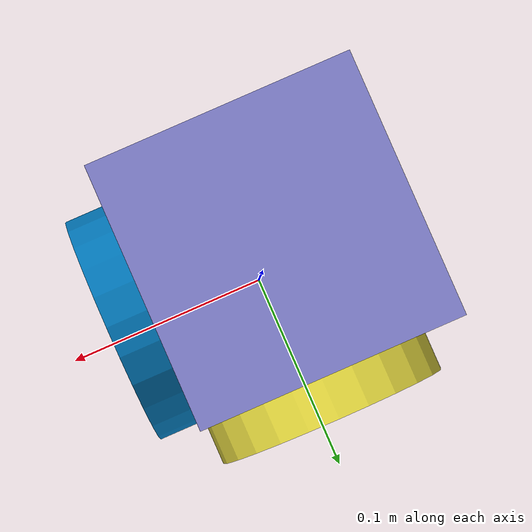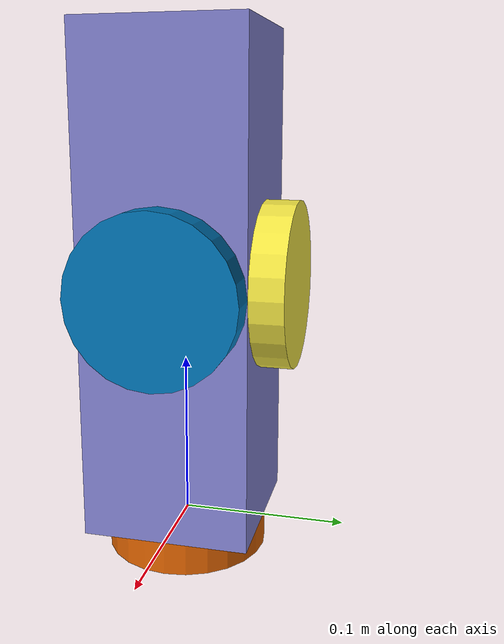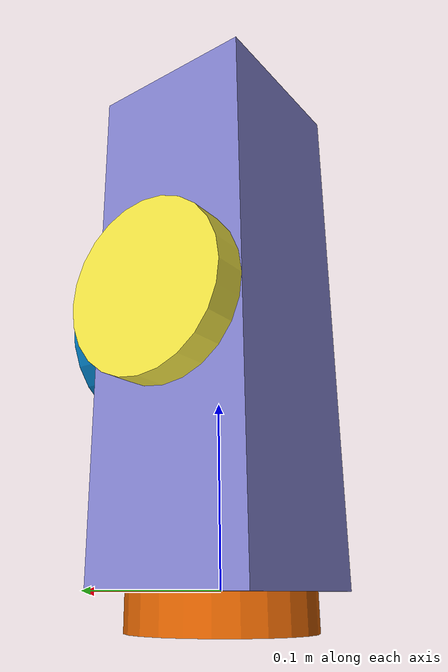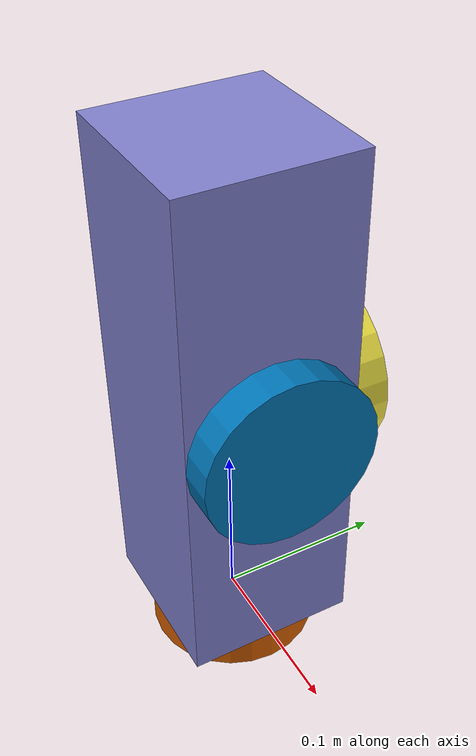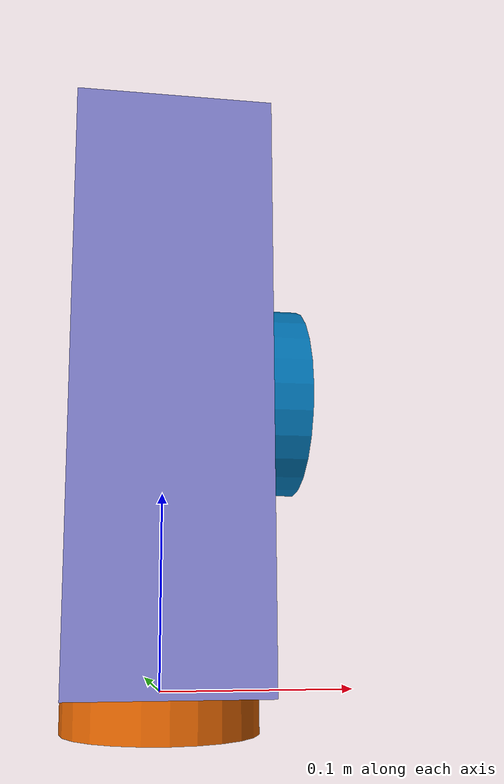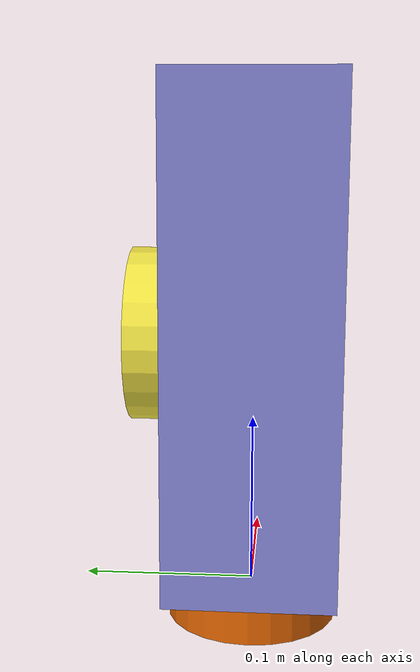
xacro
<?xml version="1.0"?>
<robot xmlns:xacro="http://www.ros.org/wiki/xacro"  name="robot">

    <xacro:include filename="cubesat_core.xacro"/>
    <xacro:include filename="adcs_control.xacro"/>
    <xacro:include filename="imu.xacro"/>

</robot>

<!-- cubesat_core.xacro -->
<robot xmlns:xacro="http://www.ros.org/wiki/xacro">
    <xacro:include filename="inertial_macros.xacro" />

    <!-- adding the variable -->
    <xacro:property name="wheel_radius" value="0.05" />
    <xacro:property name="wheel_thick" value="0.04" />

    <material name="white">
        <color rgba="1.0 1.0 1.0 1.0" />
    </material>

    <material name="red">
        <color rgba="1.0 0.2 0.2 1.0" />
    </material>
    <material name="black">
        <color rgba="0 0 0 0" />
    </material>
    <material name="light_blue">
        <color rgba="0.5 0.5 0.8 1.0" />
    </material>

    <!-- base link -->
    <link name="base_link"></link>

    <!-- base_footprint link -->
    <joint name="base_footprint_joint" type="fixed">
        <parent link="base_link" />
        <child link="base_footprint" />
        <origin xyz="0.0 0.0 0.0" rpy="0.0 0.0 0.0" />
    </joint>

    <link name="base_footprint"></link>

    <!-- sat_body link -->
    <joint name="sat_body_joint" type="fixed">
        <parent link="base_link" />
        <child link="sat_body" />
        <origin xyz="0.0 0.0 0.15" />
    </joint>

    <link name="sat_body">
        <visual>
            <origin xyz="0.0 0.0 0.0" />

            <geometry>
                <box size="0.1 0.1 0.3 " />
            </geometry>
            <material name="light_blue" />
        </visual>
        <collision>

            <origin xyz="0.0 0.0 0.0" />

            <geometry>
                <box size="0.1 0.1 0.3 " />
            </geometry>

        </collision>
        <xacro:inertial_box mass="0.5" x="0.1" y="0.1" z="0.3">
            <origin xyz="0.0 0.0 0.0" rpy="0 0 0" />
        </xacro:inertial_box>

    </link>
    <gazebo reference='sat_body'>
        <material>Gazebo/Orange </material>
    </gazebo>
    <!-- reaction_wheel_xz link (lettering referes to the plane parallel to them) -->
    <joint name="rec_wheel_xz_joint" type="continuous">
        <parent link="sat_body" />
        <child link="rec_wheel_xz" />
        <origin xyz="0.0 0.05 0.0" rpy="-${pi/2} 0 0" />
        <axis xyz="0.0 0.0 1.0" />
    </joint>

    <link name="rec_wheel_xz">
        <visual>
            <geometry>
                <cylinder radius="${wheel_radius}" length="0.04" />
                <material name="black" />
            </geometry>
        </visual>
        <collision>

            <geometry>
                <cylinder radius="${wheel_radius}" length="0.04" />
            </geometry>

        </collision>
        <xacro:inertial_cylinder mass="0.1" length="0.04" radius="${wheel_radius}">
            <origin xyz="0.0 0.0 0.0" rpy="0.0 0.0 0.0" />
        </xacro:inertial_cylinder>

    </link>
    <gazebo reference='rec_wheel_xz'>
        <material>Gazebo/Motorway</material>
    </gazebo>

    <!-- reaction wheel in yz plane link -->
    <joint name="rec_wheel_yz_joint" type="continuous">
        <parent link="sat_body" />
        <child link="rec_wheel_yz" />
        <origin xyz="0.05 0.0 0.0" rpy="0 ${pi/2} 0" />
        <axis xyz="0.0 0.0 1.0" />
    </joint>

    <link name="rec_wheel_yz">
        <visual>
            <geometry>
                <cylinder radius="${wheel_radius}" length="0.04" />
                <material name="black" />
            </geometry>
        </visual>
        <collision>

            <geometry>
                <cylinder radius="${wheel_radius}" length="0.04" />
            </geometry>

        </collision>
        <xacro:inertial_cylinder mass="0.1" length="0.04" radius="${wheel_radius}">
            <origin xyz="0.0 0.0 0.0" rpy="0.0 0.0 0.0" />
        </xacro:inertial_cylinder>

    </link>
    <gazebo reference='rec_wheel_yz'>
        <material>Gazebo/Motorway</material>
    </gazebo>

    <!-- reaction wheel in xy plane link -->
    <joint name="rec_wheel_xy_joint" type="continuous">
        <parent link="sat_body" />
        <child link="rec_wheel_xy" />
        <origin xyz="0.0 0.0 -0.15" rpy="0 ${pi} 0" />
        <axis xyz="0.0 0.0 1.0" />
    </joint>

    <link name="rec_wheel_xy">
        <visual>
            <geometry>
                <cylinder radius="${wheel_radius}" length="0.04" />
                <material name="black" />
            </geometry>
        </visual>
        <collision>

            <geometry>
                <cylinder radius="${wheel_radius}" length="0.04" />
            </geometry>

        </collision>
        <xacro:inertial_cylinder mass="0.1" length="0.04" radius="${wheel_radius}">
            <origin xyz="0.0 0.0 0.0" rpy="0.0 0.0 0.0" />
        </xacro:inertial_cylinder>

    </link>
    <gazebo reference='rec_wheel_xy'>
        <material>Gazebo/Motorway</material>
    </gazebo>

</robot>

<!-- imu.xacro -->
<robot xmlns:xacro="http://www.ros.org/wiki/xacro" name="robot">

    <joint name="imu_joint" type="fixed">
        <parent link="sat_body" />
        <child link="imu_link" />
        <origin xyz="0.0 0.0 0.00" rpy="0.0 0.0 0.0" />
    </joint>

    <link name="imu_link">

    </link>

  <gazebo reference="imu_link">
    <gravity>true</gravity>
    <sensor name="imu_sensor" type="imu">
      <always_on>true</always_on>
      <update_rate>100</update_rate>
      <visualize>true</visualize>
      <topic>__default_topic__</topic>
      <plugin filename="libgazebo_ros_imu_sensor.so" name="imu_plugin">
        <topicName>imu</topicName>
        <bodyName>imu_link</bodyName>
        <updateRateHZ>10.0</updateRateHZ>
        <xyzOffset>0 0 0</xyzOffset>
        <rpyOffset>0 0 0</rpyOffset>
        <frameName>imu_link</frameName>
        <initialOrientationAsReference>true</initialOrientationAsReference>
      </plugin>
      <pose>0 0 0 0 0 0</pose>
    </sensor>
  </gazebo>

</robot>
